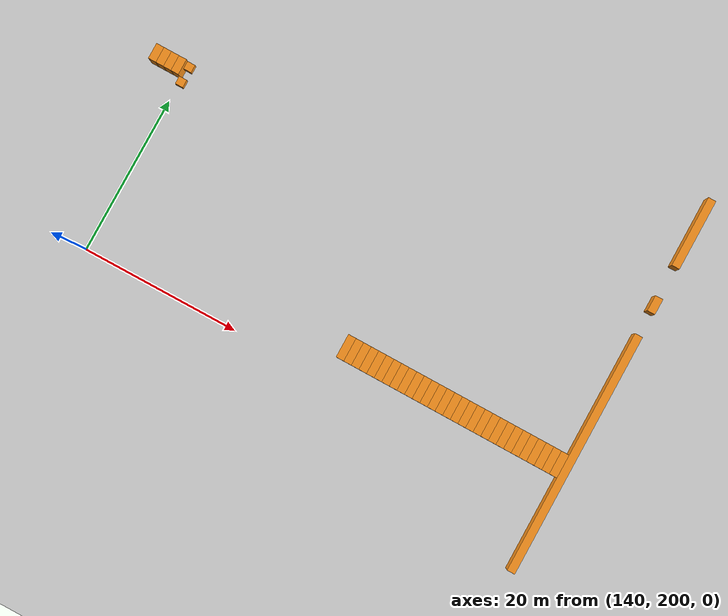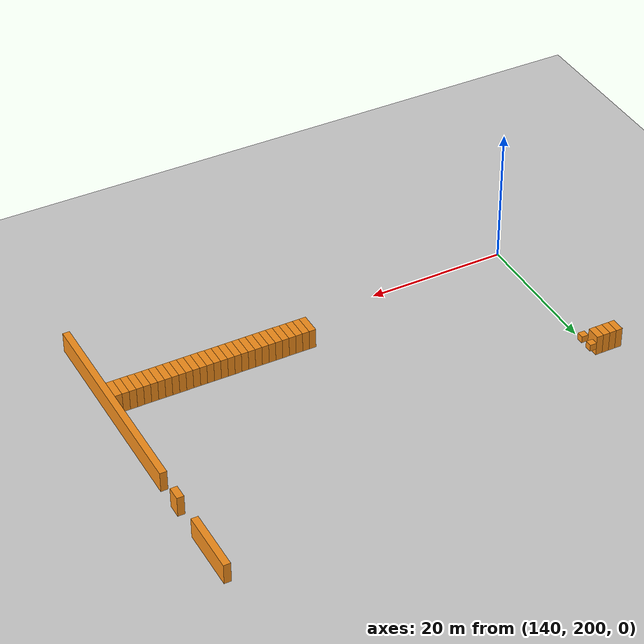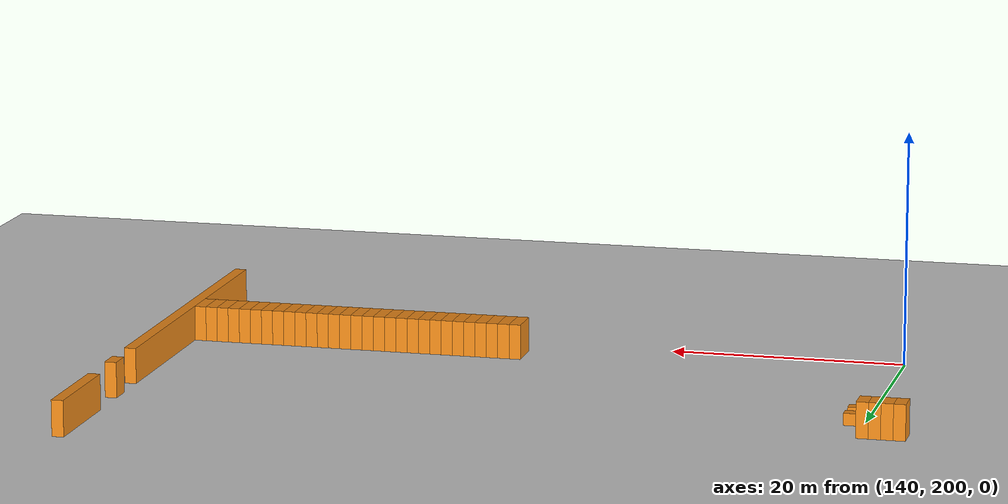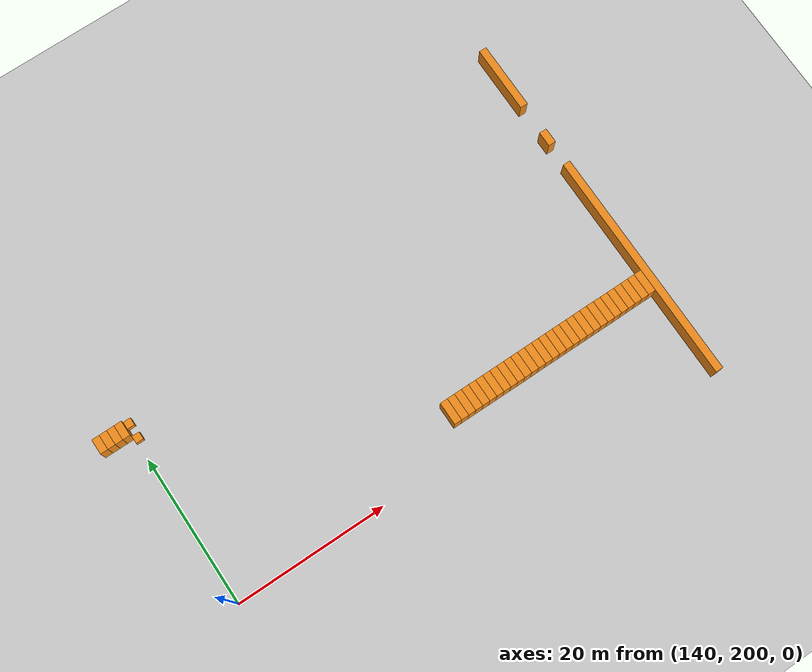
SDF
<sdf version="1.6">
 <world name="default">
  <include><uri>model://ground_plane</uri></include>
  <model name="unit_box_1463">
   <pose>136.50   224.00     1.50 0 0 0</pose>
   <static>1</static>
   <link name="link">
    <inertial>
     <mass>5000</mass>
     <inertia><ixx>200</ixx><ixy>0</ixy><ixz>0</ixz><iyy>200</iyy><iyz>0</iyz><izz>200</izz></inertia>
    </inertial>
    <collision name="collision"><geometry><box><size>1 2 3</size></box></geometry></collision>
    <visual name="visual">
     <geometry><box><size>1 2 3</size></box></geometry>
     <material>
      <script><name>Gazebo/Orange</name><uri>file://media/materials/scripts/gazebo.material</uri></script>
     </material>
    </visual>
   </link>
  </model>
  <model name="unit_box_1477">
   <pose>137.50   224.00     1.50 0 0 0</pose>
   <static>1</static>
   <link name="link">
    <inertial>
     <mass>5000</mass>
     <inertia><ixx>200</ixx><ixy>0</ixy><ixz>0</ixz><iyy>200</iyy><iyz>0</iyz><izz>200</izz></inertia>
    </inertial>
    <collision name="collision"><geometry><box><size>1 2 3</size></box></geometry></collision>
    <visual name="visual">
     <geometry><box><size>1 2 3</size></box></geometry>
     <material>
      <script><name>Gazebo/Orange</name><uri>file://media/materials/scripts/gazebo.material</uri></script>
     </material>
    </visual>
   </link>
  </model>
  <model name="unit_box_1490">
   <pose>138.50   224.00     1.50 0 0 0</pose>
   <static>1</static>
   <link name="link">
    <inertial>
     <mass>5000</mass>
     <inertia><ixx>200</ixx><ixy>0</ixy><ixz>0</ixz><iyy>200</iyy><iyz>0</iyz><izz>200</izz></inertia>
    </inertial>
    <collision name="collision"><geometry><box><size>1 2 3</size></box></geometry></collision>
    <visual name="visual">
     <geometry><box><size>1 2 3</size></box></geometry>
     <material>
      <script><name>Gazebo/Orange</name><uri>file://media/materials/scripts/gazebo.material</uri></script>
     </material>
    </visual>
   </link>
  </model>
  <model name="unit_box_1503">
   <pose>139.50   224.00     1.50 0 0 0</pose>
   <static>1</static>
   <link name="link">
    <inertial>
     <mass>5000</mass>
     <inertia><ixx>200</ixx><ixy>0</ixy><ixz>0</ixz><iyy>200</iyy><iyz>0</iyz><izz>200</izz></inertia>
    </inertial>
    <collision name="collision"><geometry><box><size>1 2 3</size></box></geometry></collision>
    <visual name="visual">
     <geometry><box><size>1 2 3</size></box></geometry>
     <material>
      <script><name>Gazebo/Orange</name><uri>file://media/materials/scripts/gazebo.material</uri></script>
     </material>
    </visual>
   </link>
  </model>
  <model name="unit_box_1514">
   <pose>140.50   222.50     1.50 0 0 0</pose>
   <static>1</static>
   <link name="link">
    <inertial>
     <mass>5000</mass>
     <inertia><ixx>200</ixx><ixy>0</ixy><ixz>0</ixz><iyy>200</iyy><iyz>0</iyz><izz>200</izz></inertia>
    </inertial>
    <collision name="collision"><geometry><box><size>1 1 1</size></box></geometry></collision>
    <visual name="visual">
     <geometry><box><size>1 1 1</size></box></geometry>
     <material>
      <script><name>Gazebo/Orange</name><uri>file://media/materials/scripts/gazebo.material</uri></script>
     </material>
    </visual>
   </link>
  </model>
  <model name="unit_box_1515">
   <pose>140.50   224.50     1.50 0 0 0</pose>
   <static>1</static>
   <link name="link">
    <inertial>
     <mass>5000</mass>
     <inertia><ixx>200</ixx><ixy>0</ixy><ixz>0</ixz><iyy>200</iyy><iyz>0</iyz><izz>200</izz></inertia>
    </inertial>
    <collision name="collision"><geometry><box><size>1 1 1</size></box></geometry></collision>
    <visual name="visual">
     <geometry><box><size>1 1 1</size></box></geometry>
     <material>
      <script><name>Gazebo/Orange</name><uri>file://media/materials/scripts/gazebo.material</uri></script>
     </material>
    </visual>
   </link>
  </model>
  <model name="unit_box_1765">
   <pose>172.50   204.50     1.50 0 0 0</pose>
   <static>1</static>
   <link name="link">
    <inertial>
     <mass>5000</mass>
     <inertia><ixx>200</ixx><ixy>0</ixy><ixz>0</ixz><iyy>200</iyy><iyz>0</iyz><izz>200</izz></inertia>
    </inertial>
    <collision name="collision"><geometry><box><size>1 3 3</size></box></geometry></collision>
    <visual name="visual">
     <geometry><box><size>1 3 3</size></box></geometry>
     <material>
      <script><name>Gazebo/Orange</name><uri>file://media/materials/scripts/gazebo.material</uri></script>
     </material>
    </visual>
   </link>
  </model>
  <model name="unit_box_1772">
   <pose>173.50   204.50     1.50 0 0 0</pose>
   <static>1</static>
   <link name="link">
    <inertial>
     <mass>5000</mass>
     <inertia><ixx>200</ixx><ixy>0</ixy><ixz>0</ixz><iyy>200</iyy><iyz>0</iyz><izz>200</izz></inertia>
    </inertial>
    <collision name="collision"><geometry><box><size>1 3 3</size></box></geometry></collision>
    <visual name="visual">
     <geometry><box><size>1 3 3</size></box></geometry>
     <material>
      <script><name>Gazebo/Orange</name><uri>file://media/materials/scripts/gazebo.material</uri></script>
     </material>
    </visual>
   </link>
  </model>
  <model name="unit_box_1779">
   <pose>174.50   204.50     1.50 0 0 0</pose>
   <static>1</static>
   <link name="link">
    <inertial>
     <mass>5000</mass>
     <inertia><ixx>200</ixx><ixy>0</ixy><ixz>0</ixz><iyy>200</iyy><iyz>0</iyz><izz>200</izz></inertia>
    </inertial>
    <collision name="collision"><geometry><box><size>1 3 3</size></box></geometry></collision>
    <visual name="visual">
     <geometry><box><size>1 3 3</size></box></geometry>
     <material>
      <script><name>Gazebo/Orange</name><uri>file://media/materials/scripts/gazebo.material</uri></script>
     </material>
    </visual>
   </link>
  </model>
  <model name="unit_box_1786">
   <pose>175.50   204.50     1.50 0 0 0</pose>
   <static>1</static>
   <link name="link">
    <inertial>
     <mass>5000</mass>
     <inertia><ixx>200</ixx><ixy>0</ixy><ixz>0</ixz><iyy>200</iyy><iyz>0</iyz><izz>200</izz></inertia>
    </inertial>
    <collision name="collision"><geometry><box><size>1 3 3</size></box></geometry></collision>
    <visual name="visual">
     <geometry><box><size>1 3 3</size></box></geometry>
     <material>
      <script><name>Gazebo/Orange</name><uri>file://media/materials/scripts/gazebo.material</uri></script>
     </material>
    </visual>
   </link>
  </model>
  <model name="unit_box_1793">
   <pose>176.50   204.50     1.50 0 0 0</pose>
   <static>1</static>
   <link name="link">
    <inertial>
     <mass>5000</mass>
     <inertia><ixx>200</ixx><ixy>0</ixy><ixz>0</ixz><iyy>200</iyy><iyz>0</iyz><izz>200</izz></inertia>
    </inertial>
    <collision name="collision"><geometry><box><size>1 3 3</size></box></geometry></collision>
    <visual name="visual">
     <geometry><box><size>1 3 3</size></box></geometry>
     <material>
      <script><name>Gazebo/Orange</name><uri>file://media/materials/scripts/gazebo.material</uri></script>
     </material>
    </visual>
   </link>
  </model>
  <model name="unit_box_1800">
   <pose>177.50   204.50     1.50 0 0 0</pose>
   <static>1</static>
   <link name="link">
    <inertial>
     <mass>5000</mass>
     <inertia><ixx>200</ixx><ixy>0</ixy><ixz>0</ixz><iyy>200</iyy><iyz>0</iyz><izz>200</izz></inertia>
    </inertial>
    <collision name="collision"><geometry><box><size>1 3 3</size></box></geometry></collision>
    <visual name="visual">
     <geometry><box><size>1 3 3</size></box></geometry>
     <material>
      <script><name>Gazebo/Orange</name><uri>file://media/materials/scripts/gazebo.material</uri></script>
     </material>
    </visual>
   </link>
  </model>
  <model name="unit_box_1807">
   <pose>178.50   204.50     1.50 0 0 0</pose>
   <static>1</static>
   <link name="link">
    <inertial>
     <mass>5000</mass>
     <inertia><ixx>200</ixx><ixy>0</ixy><ixz>0</ixz><iyy>200</iyy><iyz>0</iyz><izz>200</izz></inertia>
    </inertial>
    <collision name="collision"><geometry><box><size>1 3 3</size></box></geometry></collision>
    <visual name="visual">
     <geometry><box><size>1 3 3</size></box></geometry>
     <material>
      <script><name>Gazebo/Orange</name><uri>file://media/materials/scripts/gazebo.material</uri></script>
     </material>
    </visual>
   </link>
  </model>
  <model name="unit_box_1815">
   <pose>179.50   204.50     1.50 0 0 0</pose>
   <static>1</static>
   <link name="link">
    <inertial>
     <mass>5000</mass>
     <inertia><ixx>200</ixx><ixy>0</ixy><ixz>0</ixz><iyy>200</iyy><iyz>0</iyz><izz>200</izz></inertia>
    </inertial>
    <collision name="collision"><geometry><box><size>1 3 3</size></box></geometry></collision>
    <visual name="visual">
     <geometry><box><size>1 3 3</size></box></geometry>
     <material>
      <script><name>Gazebo/Orange</name><uri>file://media/materials/scripts/gazebo.material</uri></script>
     </material>
    </visual>
   </link>
  </model>
  <model name="unit_box_1823">
   <pose>180.50   204.50     1.50 0 0 0</pose>
   <static>1</static>
   <link name="link">
    <inertial>
     <mass>5000</mass>
     <inertia><ixx>200</ixx><ixy>0</ixy><ixz>0</ixz><iyy>200</iyy><iyz>0</iyz><izz>200</izz></inertia>
    </inertial>
    <collision name="collision"><geometry><box><size>1 3 3</size></box></geometry></collision>
    <visual name="visual">
     <geometry><box><size>1 3 3</size></box></geometry>
     <material>
      <script><name>Gazebo/Orange</name><uri>file://media/materials/scripts/gazebo.material</uri></script>
     </material>
    </visual>
   </link>
  </model>
  <model name="unit_box_1832">
   <pose>181.50   204.50     1.50 0 0 0</pose>
   <static>1</static>
   <link name="link">
    <inertial>
     <mass>5000</mass>
     <inertia><ixx>200</ixx><ixy>0</ixy><ixz>0</ixz><iyy>200</iyy><iyz>0</iyz><izz>200</izz></inertia>
    </inertial>
    <collision name="collision"><geometry><box><size>1 3 3</size></box></geometry></collision>
    <visual name="visual">
     <geometry><box><size>1 3 3</size></box></geometry>
     <material>
      <script><name>Gazebo/Orange</name><uri>file://media/materials/scripts/gazebo.material</uri></script>
     </material>
    </visual>
   </link>
  </model>
  <model name="unit_box_1842">
   <pose>182.50   204.50     1.50 0 0 0</pose>
   <static>1</static>
   <link name="link">
    <inertial>
     <mass>5000</mass>
     <inertia><ixx>200</ixx><ixy>0</ixy><ixz>0</ixz><iyy>200</iyy><iyz>0</iyz><izz>200</izz></inertia>
    </inertial>
    <collision name="collision"><geometry><box><size>1 3 3</size></box></geometry></collision>
    <visual name="visual">
     <geometry><box><size>1 3 3</size></box></geometry>
     <material>
      <script><name>Gazebo/Orange</name><uri>file://media/materials/scripts/gazebo.material</uri></script>
     </material>
    </visual>
   </link>
  </model>
  <model name="unit_box_1851">
   <pose>183.50   204.50     1.50 0 0 0</pose>
   <static>1</static>
   <link name="link">
    <inertial>
     <mass>5000</mass>
     <inertia><ixx>200</ixx><ixy>0</ixy><ixz>0</ixz><iyy>200</iyy><iyz>0</iyz><izz>200</izz></inertia>
    </inertial>
    <collision name="collision"><geometry><box><size>1 3 3</size></box></geometry></collision>
    <visual name="visual">
     <geometry><box><size>1 3 3</size></box></geometry>
     <material>
      <script><name>Gazebo/Orange</name><uri>file://media/materials/scripts/gazebo.material</uri></script>
     </material>
    </visual>
   </link>
  </model>
  <model name="unit_box_1860">
   <pose>184.50   204.50     1.50 0 0 0</pose>
   <static>1</static>
   <link name="link">
    <inertial>
     <mass>5000</mass>
     <inertia><ixx>200</ixx><ixy>0</ixy><ixz>0</ixz><iyy>200</iyy><iyz>0</iyz><izz>200</izz></inertia>
    </inertial>
    <collision name="collision"><geometry><box><size>1 3 3</size></box></geometry></collision>
    <visual name="visual">
     <geometry><box><size>1 3 3</size></box></geometry>
     <material>
      <script><name>Gazebo/Orange</name><uri>file://media/materials/scripts/gazebo.material</uri></script>
     </material>
    </visual>
   </link>
  </model>
  <model name="unit_box_1869">
   <pose>185.50   204.50     1.50 0 0 0</pose>
   <static>1</static>
   <link name="link">
    <inertial>
     <mass>5000</mass>
     <inertia><ixx>200</ixx><ixy>0</ixy><ixz>0</ixz><iyy>200</iyy><iyz>0</iyz><izz>200</izz></inertia>
    </inertial>
    <collision name="collision"><geometry><box><size>1 3 3</size></box></geometry></collision>
    <visual name="visual">
     <geometry><box><size>1 3 3</size></box></geometry>
     <material>
      <script><name>Gazebo/Orange</name><uri>file://media/materials/scripts/gazebo.material</uri></script>
     </material>
    </visual>
   </link>
  </model>
  <model name="unit_box_1877">
   <pose>186.50   204.50     1.50 0 0 0</pose>
   <static>1</static>
   <link name="link">
    <inertial>
     <mass>5000</mass>
     <inertia><ixx>200</ixx><ixy>0</ixy><ixz>0</ixz><iyy>200</iyy><iyz>0</iyz><izz>200</izz></inertia>
    </inertial>
    <collision name="collision"><geometry><box><size>1 3 3</size></box></geometry></collision>
    <visual name="visual">
     <geometry><box><size>1 3 3</size></box></geometry>
     <material>
      <script><name>Gazebo/Orange</name><uri>file://media/materials/scripts/gazebo.material</uri></script>
     </material>
    </visual>
   </link>
  </model>
  <model name="unit_box_1885">
   <pose>187.50   204.50     1.50 0 0 0</pose>
   <static>1</static>
   <link name="link">
    <inertial>
     <mass>5000</mass>
     <inertia><ixx>200</ixx><ixy>0</ixy><ixz>0</ixz><iyy>200</iyy><iyz>0</iyz><izz>200</izz></inertia>
    </inertial>
    <collision name="collision"><geometry><box><size>1 3 3</size></box></geometry></collision>
    <visual name="visual">
     <geometry><box><size>1 3 3</size></box></geometry>
     <material>
      <script><name>Gazebo/Orange</name><uri>file://media/materials/scripts/gazebo.material</uri></script>
     </material>
    </visual>
   </link>
  </model>
  <model name="unit_box_1893">
   <pose>188.50   204.50     1.50 0 0 0</pose>
   <static>1</static>
   <link name="link">
    <inertial>
     <mass>5000</mass>
     <inertia><ixx>200</ixx><ixy>0</ixy><ixz>0</ixz><iyy>200</iyy><iyz>0</iyz><izz>200</izz></inertia>
    </inertial>
    <collision name="collision"><geometry><box><size>1 3 3</size></box></geometry></collision>
    <visual name="visual">
     <geometry><box><size>1 3 3</size></box></geometry>
     <material>
      <script><name>Gazebo/Orange</name><uri>file://media/materials/scripts/gazebo.material</uri></script>
     </material>
    </visual>
   </link>
  </model>
  <model name="unit_box_1901">
   <pose>189.50   204.50     1.50 0 0 0</pose>
   <static>1</static>
   <link name="link">
    <inertial>
     <mass>5000</mass>
     <inertia><ixx>200</ixx><ixy>0</ixy><ixz>0</ixz><iyy>200</iyy><iyz>0</iyz><izz>200</izz></inertia>
    </inertial>
    <collision name="collision"><geometry><box><size>1 3 3</size></box></geometry></collision>
    <visual name="visual">
     <geometry><box><size>1 3 3</size></box></geometry>
     <material>
      <script><name>Gazebo/Orange</name><uri>file://media/materials/scripts/gazebo.material</uri></script>
     </material>
    </visual>
   </link>
  </model>
  <model name="unit_box_1909">
   <pose>190.50   204.50     1.50 0 0 0</pose>
   <static>1</static>
   <link name="link">
    <inertial>
     <mass>5000</mass>
     <inertia><ixx>200</ixx><ixy>0</ixy><ixz>0</ixz><iyy>200</iyy><iyz>0</iyz><izz>200</izz></inertia>
    </inertial>
    <collision name="collision"><geometry><box><size>1 3 3</size></box></geometry></collision>
    <visual name="visual">
     <geometry><box><size>1 3 3</size></box></geometry>
     <material>
      <script><name>Gazebo/Orange</name><uri>file://media/materials/scripts/gazebo.material</uri></script>
     </material>
    </visual>
   </link>
  </model>
  <model name="unit_box_1917">
   <pose>191.50   204.50     1.50 0 0 0</pose>
   <static>1</static>
   <link name="link">
    <inertial>
     <mass>5000</mass>
     <inertia><ixx>200</ixx><ixy>0</ixy><ixz>0</ixz><iyy>200</iyy><iyz>0</iyz><izz>200</izz></inertia>
    </inertial>
    <collision name="collision"><geometry><box><size>1 3 3</size></box></geometry></collision>
    <visual name="visual">
     <geometry><box><size>1 3 3</size></box></geometry>
     <material>
      <script><name>Gazebo/Orange</name><uri>file://media/materials/scripts/gazebo.material</uri></script>
     </material>
    </visual>
   </link>
  </model>
  <model name="unit_box_1925">
   <pose>192.50   204.50     1.50 0 0 0</pose>
   <static>1</static>
   <link name="link">
    <inertial>
     <mass>5000</mass>
     <inertia><ixx>200</ixx><ixy>0</ixy><ixz>0</ixz><iyy>200</iyy><iyz>0</iyz><izz>200</izz></inertia>
    </inertial>
    <collision name="collision"><geometry><box><size>1 3 3</size></box></geometry></collision>
    <visual name="visual">
     <geometry><box><size>1 3 3</size></box></geometry>
     <material>
      <script><name>Gazebo/Orange</name><uri>file://media/materials/scripts/gazebo.material</uri></script>
     </material>
    </visual>
   </link>
  </model>
  <model name="unit_box_1934">
   <pose>193.50   204.50     1.50 0 0 0</pose>
   <static>1</static>
   <link name="link">
    <inertial>
     <mass>5000</mass>
     <inertia><ixx>200</ixx><ixy>0</ixy><ixz>0</ixz><iyy>200</iyy><iyz>0</iyz><izz>200</izz></inertia>
    </inertial>
    <collision name="collision"><geometry><box><size>1 3 3</size></box></geometry></collision>
    <visual name="visual">
     <geometry><box><size>1 3 3</size></box></geometry>
     <material>
      <script><name>Gazebo/Orange</name><uri>file://media/materials/scripts/gazebo.material</uri></script>
     </material>
    </visual>
   </link>
  </model>
  <model name="unit_box_1943">
   <pose>194.50   204.50     1.50 0 0 0</pose>
   <static>1</static>
   <link name="link">
    <inertial>
     <mass>5000</mass>
     <inertia><ixx>200</ixx><ixy>0</ixy><ixz>0</ixz><iyy>200</iyy><iyz>0</iyz><izz>200</izz></inertia>
    </inertial>
    <collision name="collision"><geometry><box><size>1 3 3</size></box></geometry></collision>
    <visual name="visual">
     <geometry><box><size>1 3 3</size></box></geometry>
     <material>
      <script><name>Gazebo/Orange</name><uri>file://media/materials/scripts/gazebo.material</uri></script>
     </material>
    </visual>
   </link>
  </model>
  <model name="unit_box_1952">
   <pose>195.50   204.50     1.50 0 0 0</pose>
   <static>1</static>
   <link name="link">
    <inertial>
     <mass>5000</mass>
     <inertia><ixx>200</ixx><ixy>0</ixy><ixz>0</ixz><iyy>200</iyy><iyz>0</iyz><izz>200</izz></inertia>
    </inertial>
    <collision name="collision"><geometry><box><size>1 3 3</size></box></geometry></collision>
    <visual name="visual">
     <geometry><box><size>1 3 3</size></box></geometry>
     <material>
      <script><name>Gazebo/Orange</name><uri>file://media/materials/scripts/gazebo.material</uri></script>
     </material>
    </visual>
   </link>
  </model>
  <model name="unit_box_1961">
   <pose>196.50   204.50     1.50 0 0 0</pose>
   <static>1</static>
   <link name="link">
    <inertial>
     <mass>5000</mass>
     <inertia><ixx>200</ixx><ixy>0</ixy><ixz>0</ixz><iyy>200</iyy><iyz>0</iyz><izz>200</izz></inertia>
    </inertial>
    <collision name="collision"><geometry><box><size>1 3 3</size></box></geometry></collision>
    <visual name="visual">
     <geometry><box><size>1 3 3</size></box></geometry>
     <material>
      <script><name>Gazebo/Orange</name><uri>file://media/materials/scripts/gazebo.material</uri></script>
     </material>
    </visual>
   </link>
  </model>
  <model name="unit_box_1970">
   <pose>197.50   204.50     1.50 0 0 0</pose>
   <static>1</static>
   <link name="link">
    <inertial>
     <mass>5000</mass>
     <inertia><ixx>200</ixx><ixy>0</ixy><ixz>0</ixz><iyy>200</iyy><iyz>0</iyz><izz>200</izz></inertia>
    </inertial>
    <collision name="collision"><geometry><box><size>1 3 3</size></box></geometry></collision>
    <visual name="visual">
     <geometry><box><size>1 3 3</size></box></geometry>
     <material>
      <script><name>Gazebo/Orange</name><uri>file://media/materials/scripts/gazebo.material</uri></script>
     </material>
    </visual>
   </link>
  </model>
  <model name="unit_box_1979">
   <pose>198.50   204.50     1.50 0 0 0</pose>
   <static>1</static>
   <link name="link">
    <inertial>
     <mass>5000</mass>
     <inertia><ixx>200</ixx><ixy>0</ixy><ixz>0</ixz><iyy>200</iyy><iyz>0</iyz><izz>200</izz></inertia>
    </inertial>
    <collision name="collision"><geometry><box><size>1 3 3</size></box></geometry></collision>
    <visual name="visual">
     <geometry><box><size>1 3 3</size></box></geometry>
     <material>
      <script><name>Gazebo/Orange</name><uri>file://media/materials/scripts/gazebo.material</uri></script>
     </material>
    </visual>
   </link>
  </model>
  <model name="unit_box_1988">
   <pose>199.50   204.50     1.50 0 0 0</pose>
   <static>1</static>
   <link name="link">
    <inertial>
     <mass>5000</mass>
     <inertia><ixx>200</ixx><ixy>0</ixy><ixz>0</ixz><iyy>200</iyy><iyz>0</iyz><izz>200</izz></inertia>
    </inertial>
    <collision name="collision"><geometry><box><size>1 3 3</size></box></geometry></collision>
    <visual name="visual">
     <geometry><box><size>1 3 3</size></box></geometry>
     <material>
      <script><name>Gazebo/Orange</name><uri>file://media/materials/scripts/gazebo.material</uri></script>
     </material>
    </visual>
   </link>
  </model>
  <model name="unit_box_1997">
   <pose>200.50   204.50     1.50 0 0 0</pose>
   <static>1</static>
   <link name="link">
    <inertial>
     <mass>5000</mass>
     <inertia><ixx>200</ixx><ixy>0</ixy><ixz>0</ixz><iyy>200</iyy><iyz>0</iyz><izz>200</izz></inertia>
    </inertial>
    <collision name="collision"><geometry><box><size>1 3 3</size></box></geometry></collision>
    <visual name="visual">
     <geometry><box><size>1 3 3</size></box></geometry>
     <material>
      <script><name>Gazebo/Orange</name><uri>file://media/materials/scripts/gazebo.material</uri></script>
     </material>
    </visual>
   </link>
  </model>
  <model name="unit_box_2007">
   <pose>201.50   206.50     1.50 0 0 0</pose>
   <static>1</static>
   <link name="link">
    <inertial>
     <mass>5000</mass>
     <inertia><ixx>200</ixx><ixy>0</ixy><ixz>0</ixz><iyy>200</iyy><iyz>0</iyz><izz>200</izz></inertia>
    </inertial>
    <collision name="collision"><geometry><box><size>1 31 3</size></box></geometry></collision>
    <visual name="visual">
     <geometry><box><size>1 31 3</size></box></geometry>
     <material>
      <script><name>Gazebo/Orange</name><uri>file://media/materials/scripts/gazebo.material</uri></script>
     </material>
    </visual>
   </link>
  </model>
  <model name="unit_box_2008">
   <pose>201.50   226.00     1.50 0 0 0</pose>
   <static>1</static>
   <link name="link">
    <inertial>
     <mass>5000</mass>
     <inertia><ixx>200</ixx><ixy>0</ixy><ixz>0</ixz><iyy>200</iyy><iyz>0</iyz><izz>200</izz></inertia>
    </inertial>
    <collision name="collision"><geometry><box><size>1 2 3</size></box></geometry></collision>
    <visual name="visual">
     <geometry><box><size>1 2 3</size></box></geometry>
     <material>
      <script><name>Gazebo/Orange</name><uri>file://media/materials/scripts/gazebo.material</uri></script>
     </material>
    </visual>
   </link>
  </model>
  <model name="unit_box_2009">
   <pose>201.50   235.50     1.50 0 0 0</pose>
   <static>1</static>
   <link name="link">
    <inertial>
     <mass>5000</mass>
     <inertia><ixx>200</ixx><ixy>0</ixy><ixz>0</ixz><iyy>200</iyy><iyz>0</iyz><izz>200</izz></inertia>
    </inertial>
    <collision name="collision"><geometry><box><size>1 9 3</size></box></geometry></collision>
    <visual name="visual">
     <geometry><box><size>1 9 3</size></box></geometry>
     <material>
      <script><name>Gazebo/Orange</name><uri>file://media/materials/scripts/gazebo.material</uri></script>
     </material>
    </visual>
   </link>
  </model>
 </world>
</sdf>
